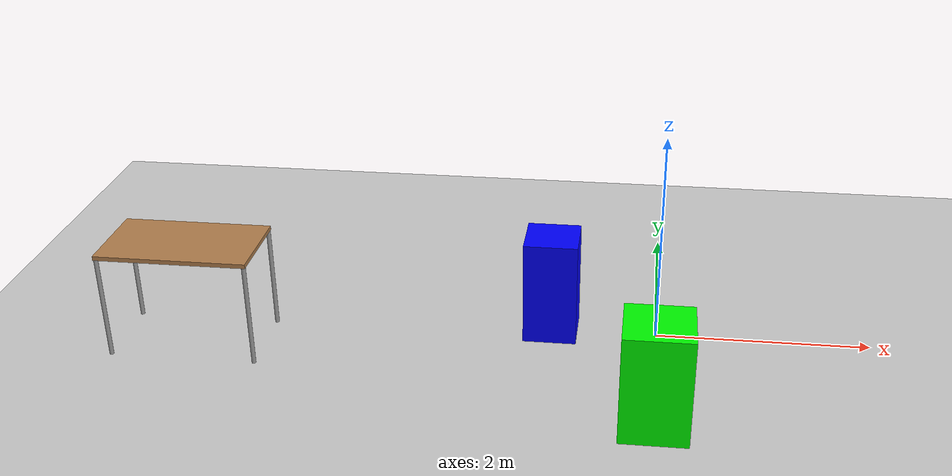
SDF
<sdf version="1.6">
 <world name="default">
  <model name="linear_obstacle">
   <pose>0 -1.5 0.5 0 0 0</pose>
   <static>false</static>
   <link name="link">
    <collision name="collision"><geometry><box><size>0.6 0.6 1.0</size></box></geometry></collision>
    <visual name="visual">
     <geometry><box><size>0.6 0.6 1.0</size></box></geometry>
     <material><ambient>0 1 0 1</ambient><diffuse>0 1 0 1</diffuse></material>
    </visual>
    <inertial>
     <mass>1.0</mass>
     <inertia><ixx>0.1</ixx><ixy>0</ixy><ixz>0</ixz><iyy>0.1</iyy><iyz>0</iyz><izz>0.1</izz></inertia>
    </inertial>
   </link>
   <plugin name="obstacle_motion" filename="libdynamic_obstacle_plugin.so"/>
  </model>
  <model name="rectangular_obstacle">
   <pose>-1 0 0.5 0 0 0</pose>
   <static>false</static>
   <link name="link">
    <collision name="collision"><geometry><box><size>0.5 0.5 1.0</size></box></geometry></collision>
    <visual name="visual">
     <geometry><box><size>0.5 0.5 1.0</size></box></geometry>
     <material><ambient>0 0 1 1</ambient><diffuse>0 0 1 1</diffuse></material>
    </visual>
    <inertial>
     <mass>1.0</mass>
     <inertia><ixx>0.1</ixx><ixy>0</ixy><ixz>0</ixz><iyy>0.1</iyy><iyz>0</iyz><izz>0.1</izz></inertia>
    </inertial>
   </link>
   <plugin name="obstacle_motion" filename="libdynamic_obstacle_plugin.so"/>
  </model>
  <model name="ground_plane">
   <static>1</static>
   <link name="link">
    <collision name="collision">
     <geometry><plane><normal>0 0 1</normal><size>100 100</size></plane></geometry>
     <surface>
      <friction><ode><mu>100</mu><mu2>50</mu2></ode></friction>
      <contact><kp>1e6</kp><kd>100</kd></contact>
     </surface>
    </collision>
    <visual name="visual">
     <cast_shadows>0</cast_shadows>
     <geometry><plane><normal>0 0 1</normal><size>100 100</size></plane></geometry>
     <material>
      <script><uri>file://media/materials/scripts/gazebo.material</uri><name>Gazebo/Grey</name></script>
     </material>
    </visual>
   </link>
  </model>
  <model name="table">
   <static>0</static>
   <link name="link">
    <collision name="surface">
     <pose>0 0 1 0 -0 0</pose>
     <geometry><box><size>1.5 0.8 0.03</size></box></geometry>
     <surface><friction><ode><mu>0.6</mu><mu2>0.6</mu2></ode></friction></surface>
    </collision>
    <visual name="visual1">
     <pose>0 0 1 0 -0 0</pose>
     <geometry><box><size>1.4 0.8 0.04</size></box></geometry>
     <material>
      <script><uri>file://media/materials/scripts/gazebo.material</uri><name>Gazebo/Wood</name></script>
     </material>
    </visual>
    <collision name="front_left_leg">
     <pose>0.68 0.38 0.5 0 -0 0</pose>
     <geometry><cylinder><radius>0.02</radius><length>1</length></cylinder></geometry>
    </collision>
    <visual name="front_left_leg">
     <pose>0.68 0.38 0.5 0 -0 0</pose>
     <geometry><cylinder><radius>0.02</radius><length>1</length></cylinder></geometry>
     <material>
      <script><uri>file://media/materials/scripts/gazebo.material</uri><name>Gazebo/Grey</name></script>
     </material>
    </visual>
    <collision name="front_right_leg">
     <pose>0.68 -0.38 0.5 0 -0 0</pose>
     <geometry><cylinder><radius>0.02</radius><length>1</length></cylinder></geometry>
    </collision>
    <visual name="front_right_leg">
     <pose>0.68 -0.38 0.5 0 -0 0</pose>
     <geometry><cylinder><radius>0.02</radius><length>1</length></cylinder></geometry>
     <material>
      <script><uri>file://media/materials/scripts/gazebo.material</uri><name>Gazebo/Grey</name></script>
     </material>
    </visual>
    <collision name="back_right_leg">
     <pose>-0.68 -0.38 0.5 0 -0 0</pose>
     <geometry><cylinder><radius>0.02</radius><length>1</length></cylinder></geometry>
    </collision>
    <visual name="back_right_leg">
     <pose>-0.68 -0.38 0.5 0 -0 0</pose>
     <geometry><cylinder><radius>0.02</radius><length>1</length></cylinder></geometry>
     <material>
      <script><uri>file://media/materials/scripts/gazebo.material</uri><name>Gazebo/Grey</name></script>
     </material>
    </visual>
    <collision name="back_left_leg">
     <pose>-0.68 0.38 0.5 0 -0 0</pose>
     <geometry><cylinder><radius>0.02</radius><length>1</length></cylinder></geometry>
    </collision>
    <visual name="back_left_leg">
     <pose>-0.68 0.38 0.5 0 -0 0</pose>
     <geometry><cylinder><radius>0.02</radius><length>1</length></cylinder></geometry>
     <material>
      <script><uri>file://media/materials/scripts/gazebo.material</uri><name>Gazebo/Grey</name></script>
     </material>
    </visual>
    <inertial>
     <inertia><ixx>1</ixx><ixy>0</ixy><ixz>0</ixz><iyy>1</iyy><iyz>0</iyz><izz>1</izz></inertia>
     <mass>1</mass>
    </inertial>
   </link>
   <pose>-4.34248 -0.532954 -9e-06 1e-06 -1e-06 0</pose>
  </model>
 </world>
</sdf>
